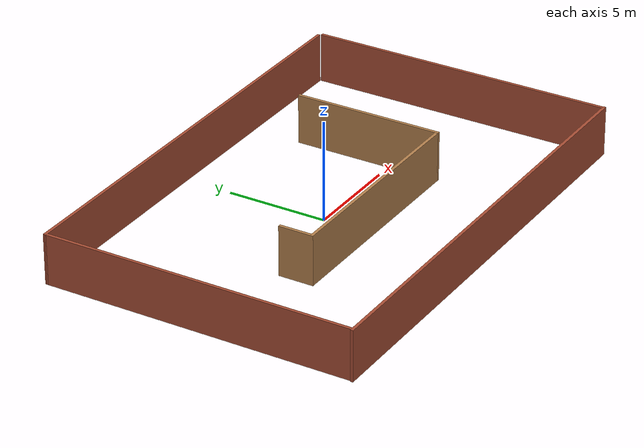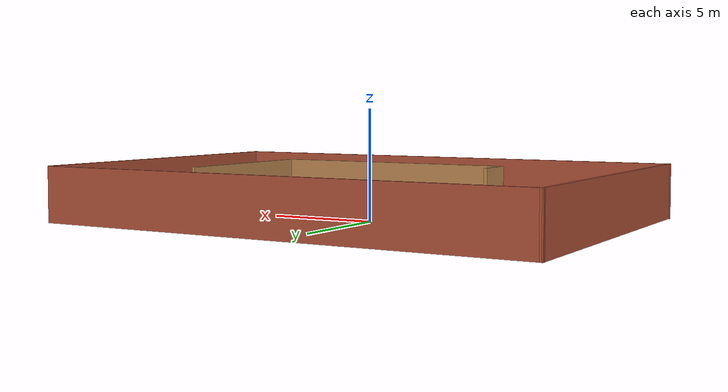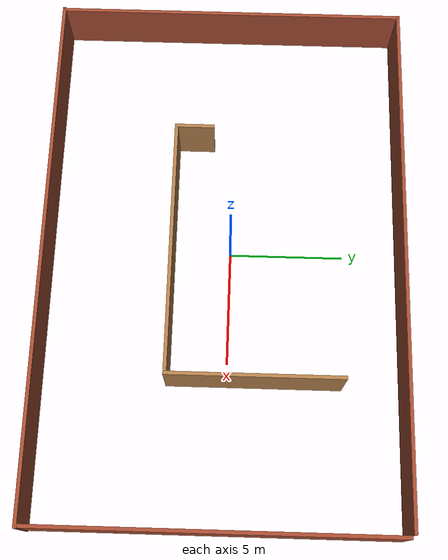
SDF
<?xml version='1.0'?>
<sdf version='1.6'>
  <model name='myworld'>
    <pose frame=''>0.528282 -0.273015 0 0 -0 0</pose>
    <link name='Wall_11'>
      <collision name='Wall_11_Collision'>
        <geometry>
          <box>
            <size>23.25 0.15 2.5</size>
          </box>
        </geometry>
        <pose frame=''>0 0 1.25 0 -0 0</pose>
      </collision>
      <visual name='Wall_11_Visual'>
        <pose frame=''>0 0 1.25 0 -0 0</pose>
        <geometry>
          <box>
            <size>23.25 0.15 2.5</size>
          </box>
        </geometry>
        <material>
          <script>
            <uri>file://media/materials/scripts/gazebo.material</uri>
            <name>Gazebo/Bricks</name>
          </script>
          <ambient>1 1 1 1</ambient>
        </material>
        <meta>
          <layer>0</layer>
        </meta>
      </visual>
      <pose frame=''>-0 -7.70697 0 0 -0 3.14159</pose>
    </link>
    <link name='Wall_12'>
      <collision name='Wall_12_Collision'>
        <geometry>
          <box>
            <size>15.5174 0.15 2.5</size>
          </box>
        </geometry>
        <pose frame=''>0 0 1.25 0 -0 0</pose>
      </collision>
      <visual name='Wall_12_Visual'>
        <pose frame=''>0 0 1.25 0 -0 0</pose>
        <geometry>
          <box>
            <size>15.5174 0.15 2.5</size>
          </box>
        </geometry>
        <material>
          <script>
            <uri>file://media/materials/scripts/gazebo.material</uri>
            <name>Gazebo/Bricks</name>
          </script>
          <ambient>1 1 1 1</ambient>
        </material>
        <meta>
          <layer>0</layer>
        </meta>
      </visual>
      <pose frame=''>-11.5063 0.023248 0 0 -0 1.57116</pose>
    </link>
    <link name='Wall_14'>
      <collision name='Wall_14_Collision'>
        <geometry>
          <box>
            <size>15.25 0.15 2.5</size>
          </box>
        </geometry>
        <pose frame=''>0 0 1.25 0 -0 0</pose>
      </collision>
      <visual name='Wall_14_Visual'>
        <pose frame=''>0 0 1.25 0 -0 0</pose>
        <geometry>
          <box>
            <size>15.25 0.15 2.5</size>
          </box>
        </geometry>
        <material>
          <script>
            <uri>file://media/materials/scripts/gazebo.material</uri>
            <name>Gazebo/Bricks</name>
          </script>
          <ambient>1 1 1 1</ambient>
        </material>
        <meta>
          <layer>0</layer>
        </meta>
      </visual>
      <pose frame=''>11.5202 -0.031521 0 0 -0 1.5708</pose>
    </link>
    <link name='Wall_16'>
      <collision name='Wall_16_Collision'>
        <geometry>
          <box>
            <size>1.75 0.15 2.5</size>
          </box>
        </geometry>
        <pose frame=''>0 0 1.25 0 -0 0</pose>
      </collision>
      <visual name='Wall_16_Visual'>
        <pose frame=''>0 0 1.25 0 -0 0</pose>
        <geometry>
          <box>
            <size>1.75 0.15 2.5</size>
          </box>
        </geometry>
        <material>
          <script>
            <uri>file://media/materials/scripts/gazebo.material</uri>
            <name>Gazebo/Wood</name>
          </script>
          <ambient>1 1 1 1</ambient>
        </material>
        <meta>
          <layer>0</layer>
        </meta>
      </visual>
      <pose frame=''>-5.70376 -1.45034 0 0 -0 -1.5708</pose>
    </link>
    <link name='Wall_17'>
      <collision name='Wall_17_Collision'>
        <geometry>
          <box>
            <size>11.25 0.15 2.5</size>
          </box>
        </geometry>
        <pose frame=''>0 0 1.25 0 -0 0</pose>
      </collision>
      <visual name='Wall_17_Visual'>
        <pose frame=''>0 0 1.25 0 -0 0</pose>
        <geometry>
          <box>
            <size>11.25 0.15 2.5</size>
          </box>
        </geometry>
        <material>
          <script>
            <uri>file://media/materials/scripts/gazebo.material</uri>
            <name>Gazebo/Wood</name>
          </script>
          <ambient>0.435294 0.796078 0.67451 1</ambient>
        </material>
        <meta>
          <layer>0</layer>
        </meta>
      </visual>
      <pose frame=''>-0.153756 -2.25034 0 0 -0 0</pose>
    </link>
    <link name='Wall_18'>
      <collision name='Wall_18_Collision'>
        <geometry>
          <box>
            <size>7.5 0.15 2.5</size>
          </box>
        </geometry>
        <pose frame=''>0 0 1.25 0 -0 0</pose>
      </collision>
      <visual name='Wall_18_Visual'>
        <pose frame=''>0 0 1.25 0 -0 0</pose>
        <geometry>
          <box>
            <size>7.5 0.15 2.5</size>
          </box>
        </geometry>
        <material>
          <script>
            <uri>file://media/materials/scripts/gazebo.material</uri>
            <name>Gazebo/Wood</name>
          </script>
          <ambient>0.435294 0.796078 0.67451 1</ambient>
        </material>
        <meta>
          <layer>0</layer>
        </meta>
      </visual>
      <pose frame=''>5.39624 1.42466 0 0 -0 1.5708</pose>
    </link>
    <link name='Wall_9'>
      <collision name='Wall_9_Collision'>
        <geometry>
          <box>
            <size>23 0.15 2.5</size>
          </box>
        </geometry>
        <pose frame=''>0 0 1.25 0 -0 0</pose>
      </collision>
      <visual name='Wall_9_Visual'>
        <pose frame=''>0 0 1.25 0 -0 0</pose>
        <geometry>
          <box>
            <size>23 0.15 2.5</size>
          </box>
        </geometry>
        <material>
          <script>
            <uri>file://media/materials/scripts/gazebo.material</uri>
            <name>Gazebo/Bricks</name>
          </script>
          <ambient>1 1 1 1</ambient>
        </material>
        <meta>
          <layer>0</layer>
        </meta>
      </visual>
      <pose frame=''>-0.084094 7.70694 0 0 -0 0</pose>
    </link>
    <static>1</static>
  </model>
</sdf>
